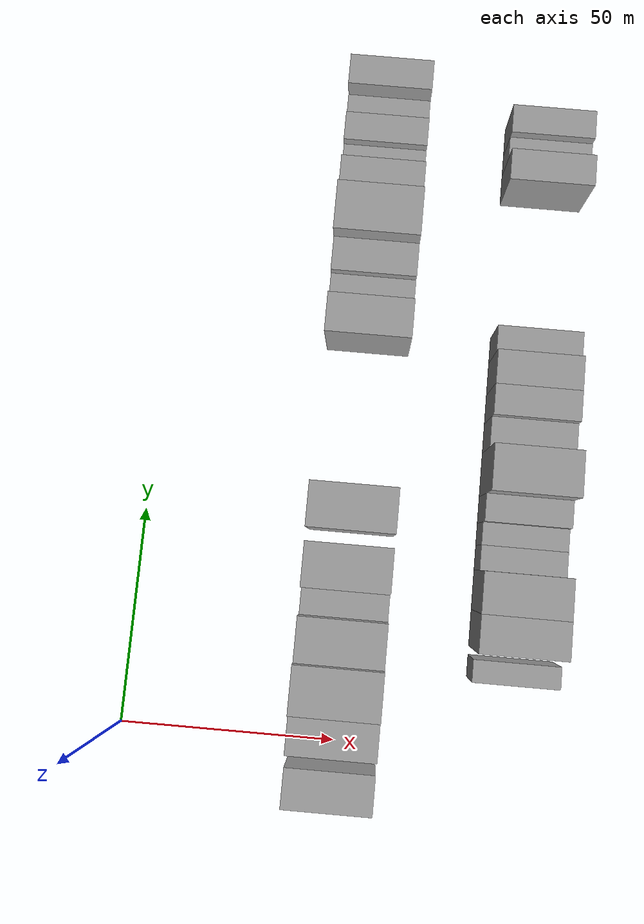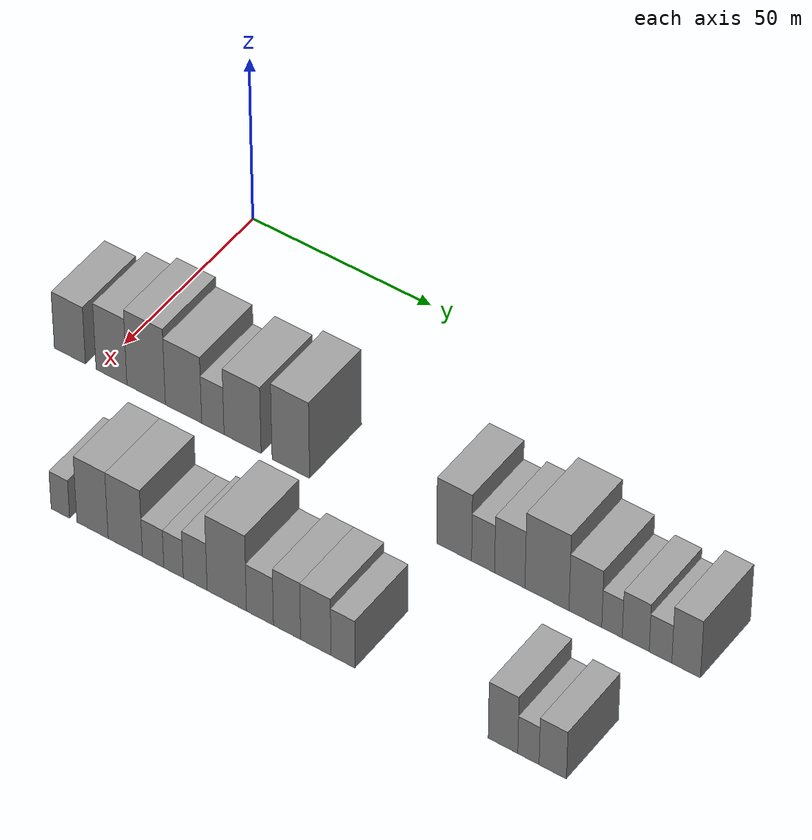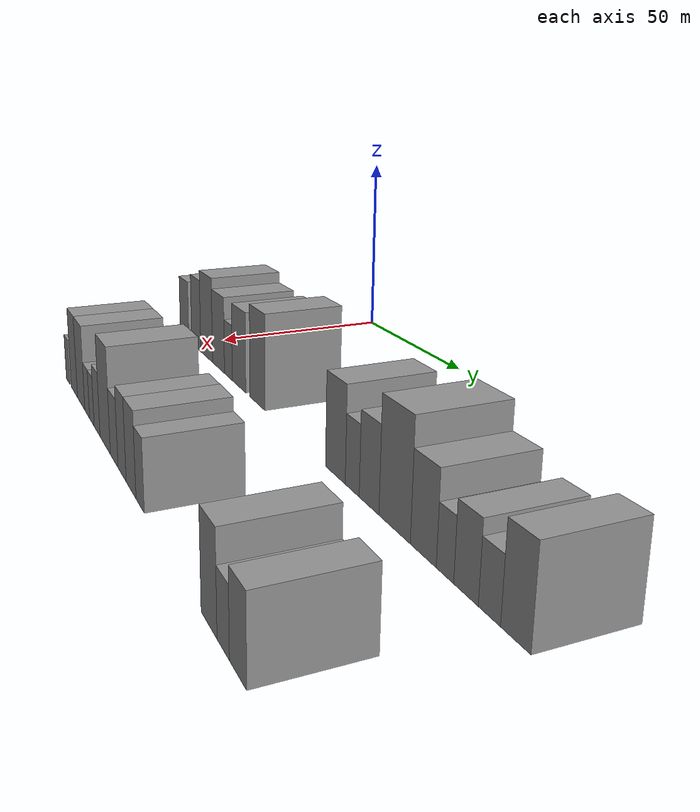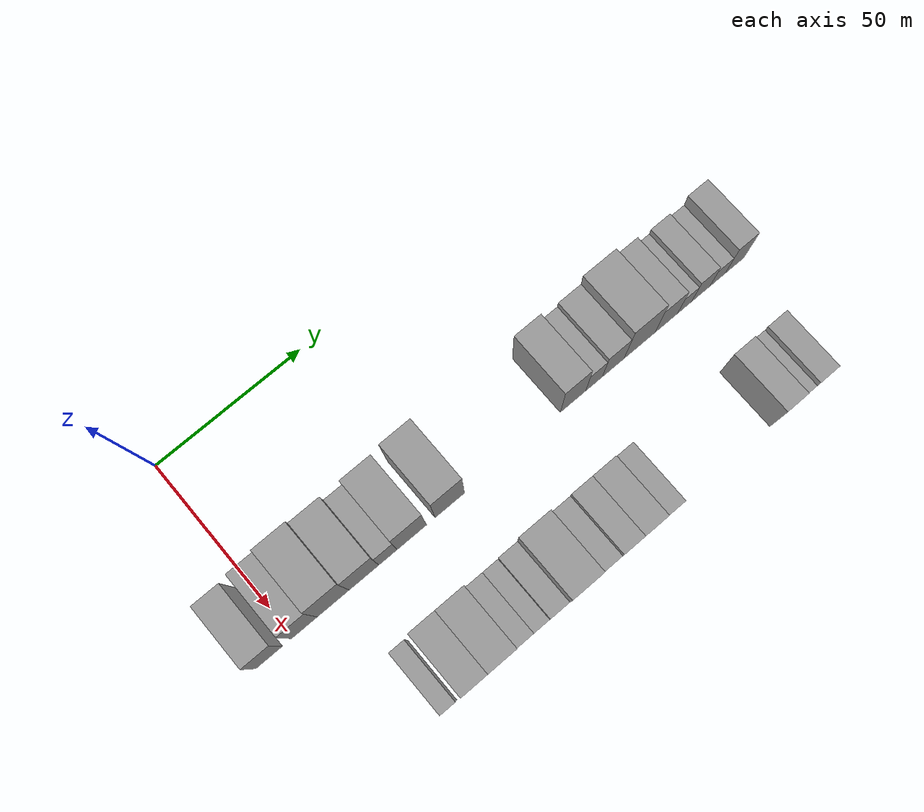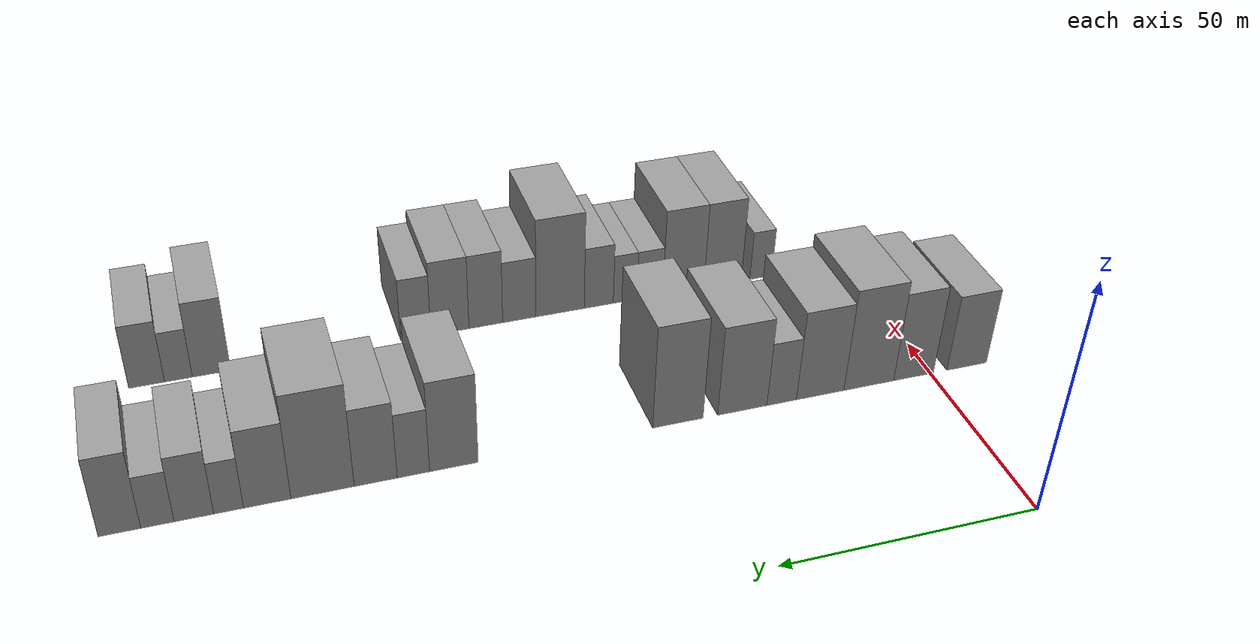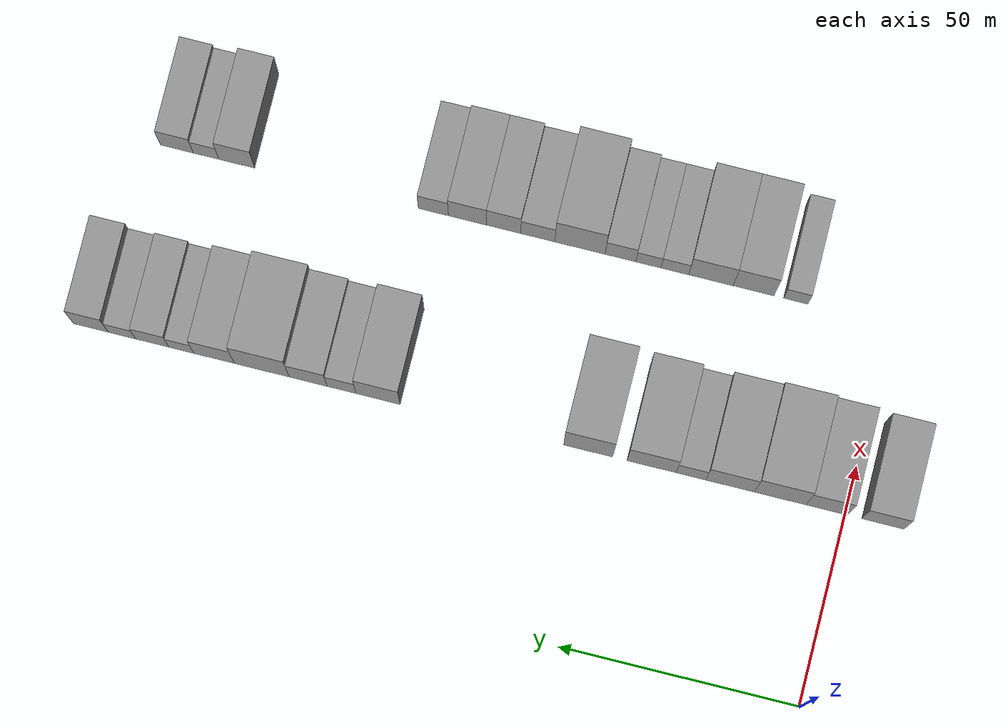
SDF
<sdf version="1.6">
 <world name="default">
  <model name="building_27">
   <static>1</static>
   <pose>50.0000 -7.8816 0 0.000000 0.000000 0.000000</pose>
   <link name="link">
    <pose>0 0 9.00 0 0 0</pose>
    <collision name="collision"><geometry><box><size>20.0000 8.7975 18.0000</size></box></geometry></collision>
    <visual name="visual">
     <cast_shadows>0</cast_shadows>
     <geometry><box><size>20.0000 8.7975 18.0000</size></box></geometry>
     <material>
      <script>
       <uri>model://grey_wall/materials/scripts</uri>
       <uri>model://grey_wall/materials/textures</uri>
       <name>vrc/grey_wall</name>
      </script>
     </material>
    </visual>
   </link>
  </model>
  <model name="building_28">
   <static>1</static>
   <pose>50.0000 3.8579 0 0.000000 0.000000 0.000000</pose>
   <link name="link">
    <pose>0 0 10.50 0 0 0</pose>
    <collision name="collision"><geometry><box><size>20.0000 8.6814 21.0000</size></box></geometry></collision>
    <visual name="visual">
     <cast_shadows>0</cast_shadows>
     <geometry><box><size>20.0000 8.6814 21.0000</size></box></geometry>
     <material>
      <script>
       <uri>model://grey_wall/materials/scripts</uri>
       <uri>model://grey_wall/materials/textures</uri>
       <name>vrc/grey_wall</name>
      </script>
     </material>
    </visual>
   </link>
  </model>
  <model name="building_29">
   <static>1</static>
   <pose>50.0000 13.5751 0 0.000000 0.000000 0.000000</pose>
   <link name="link">
    <pose>0 0 12.00 0 0 0</pose>
    <collision name="collision"><geometry><box><size>20.0000 10.7529 24.0000</size></box></geometry></collision>
    <visual name="visual">
     <cast_shadows>0</cast_shadows>
     <geometry><box><size>20.0000 10.7529 24.0000</size></box></geometry>
     <material>
      <script>
       <uri>model://grey_wall/materials/scripts</uri>
       <uri>model://grey_wall/materials/textures</uri>
       <name>vrc/grey_wall</name>
      </script>
     </material>
    </visual>
   </link>
  </model>
  <model name="building_30">
   <static>1</static>
   <pose>50.0000 24.0050 0 0.000000 0.000000 0.000000</pose>
   <link name="link">
    <pose>0 0 10.50 0 0 0</pose>
    <collision name="collision"><geometry><box><size>20.0000 10.1068 21.0000</size></box></geometry></collision>
    <visual name="visual">
     <cast_shadows>0</cast_shadows>
     <geometry><box><size>20.0000 10.1068 21.0000</size></box></geometry>
     <material>
      <script>
       <uri>model://grey_wall/materials/scripts</uri>
       <uri>model://grey_wall/materials/textures</uri>
       <name>vrc/grey_wall</name>
      </script>
     </material>
    </visual>
   </link>
  </model>
  <model name="building_31">
   <static>1</static>
   <pose>50.0000 32.1459 0 0.000000 0.000000 0.000000</pose>
   <link name="link">
    <pose>0 0 7.50 0 0 0</pose>
    <collision name="collision"><geometry><box><size>20.0000 6.1750 15.0000</size></box></geometry></collision>
    <visual name="visual">
     <cast_shadows>0</cast_shadows>
     <geometry><box><size>20.0000 6.1750 15.0000</size></box></geometry>
     <material>
      <script>
       <uri>model://grey_wall/materials/scripts</uri>
       <uri>model://grey_wall/materials/textures</uri>
       <name>vrc/grey_wall</name>
      </script>
     </material>
    </visual>
   </link>
  </model>
  <model name="building_32">
   <static>1</static>
   <pose>50.0000 40.3316 0 0.000000 0.000000 0.000000</pose>
   <link name="link">
    <pose>0 0 10.50 0 0 0</pose>
    <collision name="collision"><geometry><box><size>20.0000 10.1965 21.0000</size></box></geometry></collision>
    <visual name="visual">
     <cast_shadows>0</cast_shadows>
     <geometry><box><size>20.0000 10.1965 21.0000</size></box></geometry>
     <material>
      <script>
       <uri>model://grey_wall/materials/scripts</uri>
       <uri>model://grey_wall/materials/textures</uri>
       <name>vrc/grey_wall</name>
      </script>
     </material>
    </visual>
   </link>
  </model>
  <model name="building_33">
   <static>1</static>
   <pose>50.0000 53.5483 0 0.000000 0.000000 0.000000</pose>
   <link name="link">
    <pose>0 0 12.00 0 0 0</pose>
    <collision name="collision"><geometry><box><size>20.0000 10.2368 24.0000</size></box></geometry></collision>
    <visual name="visual">
     <cast_shadows>0</cast_shadows>
     <geometry><box><size>20.0000 10.2368 24.0000</size></box></geometry>
     <material>
      <script>
       <uri>model://grey_wall/materials/scripts</uri>
       <uri>model://grey_wall/materials/textures</uri>
       <name>vrc/grey_wall</name>
      </script>
     </material>
    </visual>
   </link>
  </model>
  <model name="building_34">
   <static>1</static>
   <pose>50.0000 97.4799 0 0.000000 0.000000 0.000000</pose>
   <link name="link">
    <pose>0 0 10.50 0 0 0</pose>
    <collision name="collision"><geometry><box><size>20.0000 9.2088 21.0000</size></box></geometry></collision>
    <visual name="visual">
     <cast_shadows>0</cast_shadows>
     <geometry><box><size>20.0000 9.2088 21.0000</size></box></geometry>
     <material>
      <script>
       <uri>model://grey_wall/materials/scripts</uri>
       <uri>model://grey_wall/materials/textures</uri>
       <name>vrc/grey_wall</name>
      </script>
     </material>
    </visual>
   </link>
  </model>
  <model name="building_35">
   <static>1</static>
   <pose>50.0000 105.1145 0 0.000000 0.000000 0.000000</pose>
   <link name="link">
    <pose>0 0 7.50 0 0 0</pose>
    <collision name="collision"><geometry><box><size>20.0000 6.0606 15.0000</size></box></geometry></collision>
    <visual name="visual">
     <cast_shadows>0</cast_shadows>
     <geometry><box><size>20.0000 6.0606 15.0000</size></box></geometry>
     <material>
      <script>
       <uri>model://grey_wall/materials/scripts</uri>
       <uri>model://grey_wall/materials/textures</uri>
       <name>vrc/grey_wall</name>
      </script>
     </material>
    </visual>
   </link>
  </model>
  <model name="building_36">
   <static>1</static>
   <pose>50.0000 112.1290 0 0.000000 0.000000 0.000000</pose>
   <link name="link">
    <pose>0 0 9.00 0 0 0</pose>
    <collision name="collision"><geometry><box><size>20.0000 7.9685 18.0000</size></box></geometry></collision>
    <visual name="visual">
     <cast_shadows>0</cast_shadows>
     <geometry><box><size>20.0000 7.9685 18.0000</size></box></geometry>
     <material>
      <script>
       <uri>model://grey_wall/materials/scripts</uri>
       <uri>model://grey_wall/materials/textures</uri>
       <name>vrc/grey_wall</name>
      </script>
     </material>
    </visual>
   </link>
  </model>
  <model name="building_37">
   <static>1</static>
   <pose>50.0000 121.8683 0 0.000000 0.000000 0.000000</pose>
   <link name="link">
    <pose>0 0 12.00 0 0 0</pose>
    <collision name="collision"><geometry><box><size>20.0000 11.5101 24.0000</size></box></geometry></collision>
    <visual name="visual">
     <cast_shadows>0</cast_shadows>
     <geometry><box><size>20.0000 11.5101 24.0000</size></box></geometry>
     <material>
      <script>
       <uri>model://grey_wall/materials/scripts</uri>
       <uri>model://grey_wall/materials/textures</uri>
       <name>vrc/grey_wall</name>
      </script>
     </material>
    </visual>
   </link>
  </model>
  <model name="building_38">
   <static>1</static>
   <pose>50.0000 131.8711 0 0.000000 0.000000 0.000000</pose>
   <link name="link">
    <pose>0 0 9.00 0 0 0</pose>
    <collision name="collision"><geometry><box><size>20.0000 8.4955 18.0000</size></box></geometry></collision>
    <visual name="visual">
     <cast_shadows>0</cast_shadows>
     <geometry><box><size>20.0000 8.4955 18.0000</size></box></geometry>
     <material>
      <script>
       <uri>model://grey_wall/materials/scripts</uri>
       <uri>model://grey_wall/materials/textures</uri>
       <name>vrc/grey_wall</name>
      </script>
     </material>
    </visual>
   </link>
  </model>
  <model name="building_39">
   <static>1</static>
   <pose>50.0000 138.7568 0 0.000000 0.000000 0.000000</pose>
   <link name="link">
    <pose>0 0 6.00 0 0 0</pose>
    <collision name="collision"><geometry><box><size>20.0000 5.2759 12.0000</size></box></geometry></collision>
    <visual name="visual">
     <cast_shadows>0</cast_shadows>
     <geometry><box><size>20.0000 5.2759 12.0000</size></box></geometry>
     <material>
      <script>
       <uri>model://grey_wall/materials/scripts</uri>
       <uri>model://grey_wall/materials/textures</uri>
       <name>vrc/grey_wall</name>
      </script>
     </material>
    </visual>
   </link>
  </model>
  <model name="building_40">
   <static>1</static>
   <pose>50.0000 144.8671 0 0.000000 0.000000 0.000000</pose>
   <link name="link">
    <pose>0 0 7.50 0 0 0</pose>
    <collision name="collision"><geometry><box><size>20.0000 6.9448 15.0000</size></box></geometry></collision>
    <visual name="visual">
     <cast_shadows>0</cast_shadows>
     <geometry><box><size>20.0000 6.9448 15.0000</size></box></geometry>
     <material>
      <script>
       <uri>model://grey_wall/materials/scripts</uri>
       <uri>model://grey_wall/materials/textures</uri>
       <name>vrc/grey_wall</name>
      </script>
     </material>
    </visual>
   </link>
  </model>
  <model name="building_41">
   <static>1</static>
   <pose>50.0000 151.2323 0 0.000000 0.000000 0.000000</pose>
   <link name="link">
    <pose>0 0 6.00 0 0 0</pose>
    <collision name="collision"><geometry><box><size>20.0000 5.7856 12.0000</size></box></geometry></collision>
    <visual name="visual">
     <cast_shadows>0</cast_shadows>
     <geometry><box><size>20.0000 5.7856 12.0000</size></box></geometry>
     <material>
      <script>
       <uri>model://grey_wall/materials/scripts</uri>
       <uri>model://grey_wall/materials/textures</uri>
       <name>vrc/grey_wall</name>
      </script>
     </material>
    </visual>
   </link>
  </model>
  <model name="building_42">
   <static>1</static>
   <pose>50.0000 157.7852 0 0.000000 0.000000 0.000000</pose>
   <link name="link">
    <pose>0 0 9.00 0 0 0</pose>
    <collision name="collision"><geometry><box><size>20.0000 7.3201 18.0000</size></box></geometry></collision>
    <visual name="visual">
     <cast_shadows>0</cast_shadows>
     <geometry><box><size>20.0000 7.3201 18.0000</size></box></geometry>
     <material>
      <script>
       <uri>model://grey_wall/materials/scripts</uri>
       <uri>model://grey_wall/materials/textures</uri>
       <name>vrc/grey_wall</name>
      </script>
     </material>
    </visual>
   </link>
  </model>
  <model name="building_93">
   <static>1</static>
   <pose>90.0000 19.8070 0 0.000000 0.000000 0.000000</pose>
   <link name="link">
    <pose>0 0 6.00 0 0 0</pose>
    <collision name="collision"><geometry><box><size>20.0000 5.0939 12.0000</size></box></geometry></collision>
    <visual name="visual">
     <cast_shadows>0</cast_shadows>
     <geometry><box><size>20.0000 5.0939 12.0000</size></box></geometry>
     <material>
      <script>
       <uri>model://grey_wall/materials/scripts</uri>
       <uri>model://grey_wall/materials/textures</uri>
       <name>vrc/grey_wall</name>
      </script>
     </material>
    </visual>
   </link>
  </model>
  <model name="building_94">
   <static>1</static>
   <pose>90.0000 28.6497 0 0.000000 0.000000 0.000000</pose>
   <link name="link">
    <pose>0 0 10.50 0 0 0</pose>
    <collision name="collision"><geometry><box><size>20.0000 8.5916 21.0000</size></box></geometry></collision>
    <visual name="visual">
     <cast_shadows>0</cast_shadows>
     <geometry><box><size>20.0000 8.5916 21.0000</size></box></geometry>
     <material>
      <script>
       <uri>model://grey_wall/materials/scripts</uri>
       <uri>model://grey_wall/materials/textures</uri>
       <name>vrc/grey_wall</name>
      </script>
     </material>
    </visual>
   </link>
  </model>
  <model name="building_95">
   <static>1</static>
   <pose>90.0000 37.6265 0 0.000000 0.000000 0.000000</pose>
   <link name="link">
    <pose>0 0 10.50 0 0 0</pose>
    <collision name="collision"><geometry><box><size>20.0000 9.3620 21.0000</size></box></geometry></collision>
    <visual name="visual">
     <cast_shadows>0</cast_shadows>
     <geometry><box><size>20.0000 9.3620 21.0000</size></box></geometry>
     <material>
      <script>
       <uri>model://grey_wall/materials/scripts</uri>
       <uri>model://grey_wall/materials/textures</uri>
       <name>vrc/grey_wall</name>
      </script>
     </material>
    </visual>
   </link>
  </model>
  <model name="building_96">
   <static>1</static>
   <pose>90.0000 45.2071 0 0.000000 0.000000 0.000000</pose>
   <link name="link">
    <pose>0 0 6.00 0 0 0</pose>
    <collision name="collision"><geometry><box><size>20.0000 5.7991 12.0000</size></box></geometry></collision>
    <visual name="visual">
     <cast_shadows>0</cast_shadows>
     <geometry><box><size>20.0000 5.7991 12.0000</size></box></geometry>
     <material>
      <script>
       <uri>model://grey_wall/materials/scripts</uri>
       <uri>model://grey_wall/materials/textures</uri>
       <name>vrc/grey_wall</name>
      </script>
     </material>
    </visual>
   </link>
  </model>
  <model name="building_97">
   <static>1</static>
   <pose>90.0000 50.7437 0 0.000000 0.000000 0.000000</pose>
   <link name="link">
    <pose>0 0 6.00 0 0 0</pose>
    <collision name="collision"><geometry><box><size>20.0000 5.2741 12.0000</size></box></geometry></collision>
    <visual name="visual">
     <cast_shadows>0</cast_shadows>
     <geometry><box><size>20.0000 5.2741 12.0000</size></box></geometry>
     <material>
      <script>
       <uri>model://grey_wall/materials/scripts</uri>
       <uri>model://grey_wall/materials/textures</uri>
       <name>vrc/grey_wall</name>
      </script>
     </material>
    </visual>
   </link>
  </model>
  <model name="building_98">
   <static>1</static>
   <pose>90.0000 56.6018 0 0.000000 0.000000 0.000000</pose>
   <link name="link">
    <pose>0 0 7.50 0 0 0</pose>
    <collision name="collision"><geometry><box><size>20.0000 6.4421 15.0000</size></box></geometry></collision>
    <visual name="visual">
     <cast_shadows>0</cast_shadows>
     <geometry><box><size>20.0000 6.4421 15.0000</size></box></geometry>
     <material>
      <script>
       <uri>model://grey_wall/materials/scripts</uri>
       <uri>model://grey_wall/materials/textures</uri>
       <name>vrc/grey_wall</name>
      </script>
     </material>
    </visual>
   </link>
  </model>
  <model name="building_99">
   <static>1</static>
   <pose>90.0000 65.1046 0 0.000000 0.000000 0.000000</pose>
   <link name="link">
    <pose>0 0 12.00 0 0 0</pose>
    <collision name="collision"><geometry><box><size>20.0000 10.5635 24.0000</size></box></geometry></collision>
    <visual name="visual">
     <cast_shadows>0</cast_shadows>
     <geometry><box><size>20.0000 10.5635 24.0000</size></box></geometry>
     <material>
      <script>
       <uri>model://grey_wall/materials/scripts</uri>
       <uri>model://grey_wall/materials/textures</uri>
       <name>vrc/grey_wall</name>
      </script>
     </material>
    </visual>
   </link>
  </model>
  <model name="building_100">
   <static>1</static>
   <pose>90.0000 73.9762 0 0.000000 0.000000 0.000000</pose>
   <link name="link">
    <pose>0 0 7.50 0 0 0</pose>
    <collision name="collision"><geometry><box><size>20.0000 7.1796 15.0000</size></box></geometry></collision>
    <visual name="visual">
     <cast_shadows>0</cast_shadows>
     <geometry><box><size>20.0000 7.1796 15.0000</size></box></geometry>
     <material>
      <script>
       <uri>model://grey_wall/materials/scripts</uri>
       <uri>model://grey_wall/materials/textures</uri>
       <name>vrc/grey_wall</name>
      </script>
     </material>
    </visual>
   </link>
  </model>
  <model name="building_101">
   <static>1</static>
   <pose>90.0000 81.1669 0 0.000000 0.000000 0.000000</pose>
   <link name="link">
    <pose>0 0 9.00 0 0 0</pose>
    <collision name="collision"><geometry><box><size>20.0000 7.2018 18.0000</size></box></geometry></collision>
    <visual name="visual">
     <cast_shadows>0</cast_shadows>
     <geometry><box><size>20.0000 7.2018 18.0000</size></box></geometry>
     <material>
      <script>
       <uri>model://grey_wall/materials/scripts</uri>
       <uri>model://grey_wall/materials/textures</uri>
       <name>vrc/grey_wall</name>
      </script>
     </material>
    </visual>
   </link>
  </model>
  <model name="building_102">
   <static>1</static>
   <pose>90.0000 88.7827 0 0.000000 0.000000 0.000000</pose>
   <link name="link">
    <pose>0 0 9.00 0 0 0</pose>
    <collision name="collision"><geometry><box><size>20.0000 8.0298 18.0000</size></box></geometry></collision>
    <visual name="visual">
     <cast_shadows>0</cast_shadows>
     <geometry><box><size>20.0000 8.0298 18.0000</size></box></geometry>
     <material>
      <script>
       <uri>model://grey_wall/materials/scripts</uri>
       <uri>model://grey_wall/materials/textures</uri>
       <name>vrc/grey_wall</name>
      </script>
     </material>
    </visual>
   </link>
  </model>
  <model name="building_103">
   <static>1</static>
   <pose>90.0000 95.9546 0 0.000000 0.000000 0.000000</pose>
   <link name="link">
    <pose>0 0 7.50 0 0 0</pose>
    <collision name="collision"><geometry><box><size>20.0000 6.3139 15.0000</size></box></geometry></collision>
    <visual name="visual">
     <cast_shadows>0</cast_shadows>
     <geometry><box><size>20.0000 6.3139 15.0000</size></box></geometry>
     <material>
      <script>
       <uri>model://grey_wall/materials/scripts</uri>
       <uri>model://grey_wall/materials/textures</uri>
       <name>vrc/grey_wall</name>
      </script>
     </material>
    </visual>
   </link>
  </model>
  <model name="building_104">
   <static>1</static>
   <pose>90.0000 137.4389 0 0.000000 0.000000 0.000000</pose>
   <link name="link">
    <pose>0 0 9.00 0 0 0</pose>
    <collision name="collision"><geometry><box><size>20.0000 7.5516 18.0000</size></box></geometry></collision>
    <visual name="visual">
     <cast_shadows>0</cast_shadows>
     <geometry><box><size>20.0000 7.5516 18.0000</size></box></geometry>
     <material>
      <script>
       <uri>model://grey_wall/materials/scripts</uri>
       <uri>model://grey_wall/materials/textures</uri>
       <name>vrc/grey_wall</name>
      </script>
     </material>
    </visual>
   </link>
  </model>
  <model name="building_105">
   <static>1</static>
   <pose>90.0000 143.9240 0 0.000000 0.000000 0.000000</pose>
   <link name="link">
    <pose>0 0 6.00 0 0 0</pose>
    <collision name="collision"><geometry><box><size>20.0000 5.4185 12.0000</size></box></geometry></collision>
    <visual name="visual">
     <cast_shadows>0</cast_shadows>
     <geometry><box><size>20.0000 5.4185 12.0000</size></box></geometry>
     <material>
      <script>
       <uri>model://grey_wall/materials/scripts</uri>
       <uri>model://grey_wall/materials/textures</uri>
       <name>vrc/grey_wall</name>
      </script>
     </material>
    </visual>
   </link>
  </model>
  <model name="building_106">
   <static>1</static>
   <pose>90.0000 150.1051 0 0.000000 0.000000 0.000000</pose>
   <link name="link">
    <pose>0 0 7.50 0 0 0</pose>
    <collision name="collision"><geometry><box><size>20.0000 6.9438 15.0000</size></box></geometry></collision>
    <visual name="visual">
     <cast_shadows>0</cast_shadows>
     <geometry><box><size>20.0000 6.9438 15.0000</size></box></geometry>
     <material>
      <script>
       <uri>model://grey_wall/materials/scripts</uri>
       <uri>model://grey_wall/materials/textures</uri>
       <name>vrc/grey_wall</name>
      </script>
     </material>
    </visual>
   </link>
  </model>
 </world>
</sdf>
